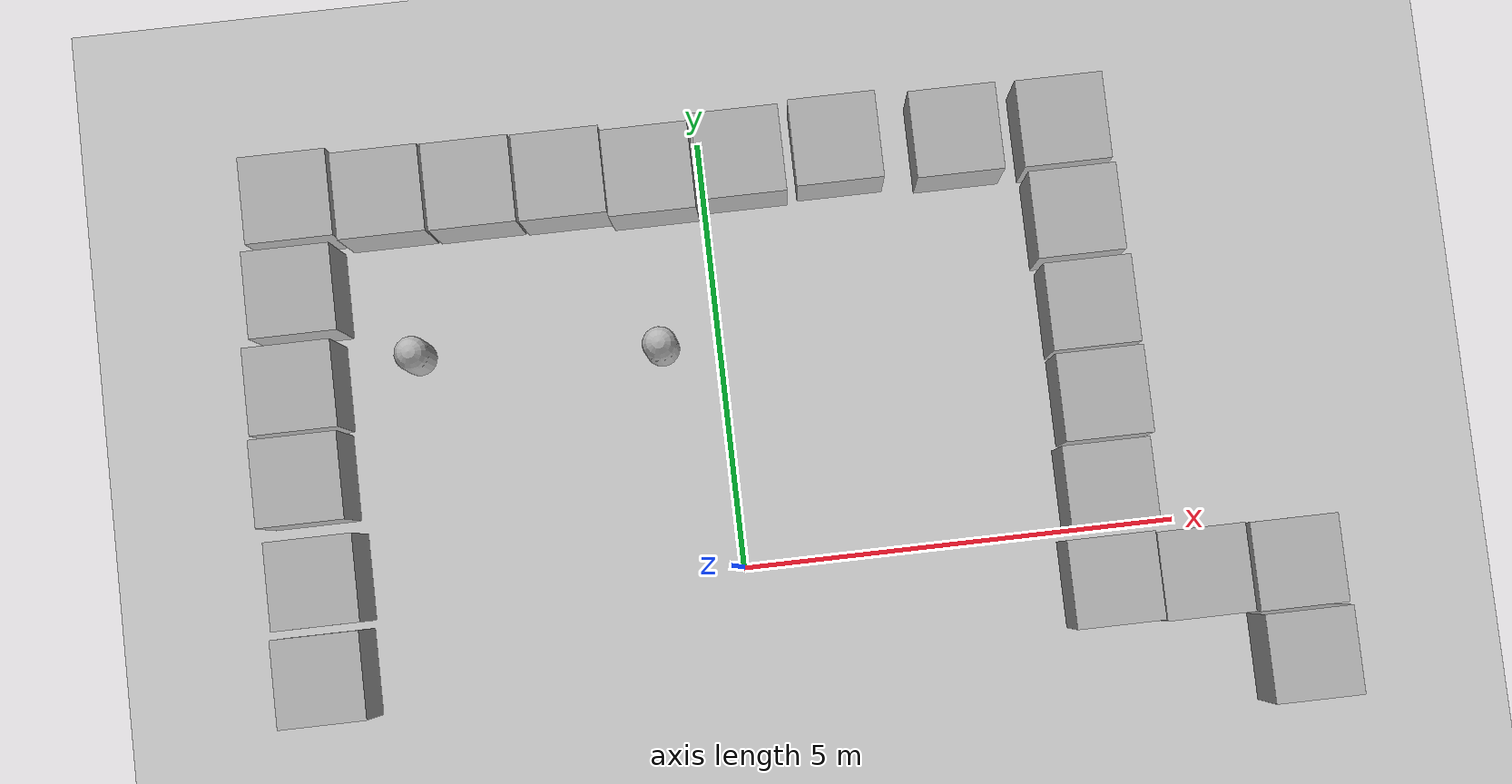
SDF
<sdf version="1.9">
 <world name="empty">
  <model name="ground_plane">
   <static>true</static>
   <link name="link">
    <collision name="collision">
     <geometry><plane><normal>0 0 1</normal><size>100 100</size></plane></geometry>
    </collision>
    <visual name="visual">
     <geometry><plane><normal>0 0 1</normal><size>100 100</size></plane></geometry>
     <material>
      <ambient>0.8 0.8 0.8 1</ambient>
      <diffuse>0.8 0.8 0.8 1</diffuse>
      <specular>0.8 0.8 0.8 1</specular>
     </material>
    </visual>
    <inertial>
     <mass>1</mass>
     <inertia><ixx>1</ixx><ixy>0</ixy><ixz>0</ixz><iyy>1</iyy><iyz>0</iyz><izz>1</izz></inertia>
    </inertial>
   </link>
  </model>
  <model name="box">
   <pose>4.25716 2.52176 0.5 0 -0 0</pose>
   <link name="box_link">
    <inertial>
     <inertia><ixx>0.16666</ixx><ixy>0</ixy><ixz>0</ixz><iyy>0.16666</iyy><iyz>0</iyz><izz>0.16666</izz></inertia>
     <mass>1</mass>
    </inertial>
    <collision name="box_collision"><geometry><box><size>1 1 1</size></box></geometry></collision>
    <visual name="box_visual">
     <geometry><box><size>1 1 1</size></box></geometry>
     <material>
      <ambient>0.3 0.3 0.3 1</ambient>
      <diffuse>0.7 0.7 0.7 1</diffuse>
      <specular>1 1 1 1</specular>
     </material>
    </visual>
   </link>
   <static>false</static>
  </model>
  <model name="box_0">
   <pose>4.26721 1.48635 0.5 0 -0 0</pose>
   <link name="box_link">
    <inertial>
     <inertia><ixx>0.16666</ixx><ixy>0</ixy><ixz>0</ixz><iyy>0.16666</iyy><iyz>0</iyz><izz>0.16666</izz></inertia>
     <mass>1</mass>
    </inertial>
    <collision name="box_collision"><geometry><box><size>1 1 1</size></box></geometry></collision>
    <visual name="box_visual">
     <geometry><box><size>1 1 1</size></box></geometry>
     <material>
      <ambient>0.3 0.3 0.3 1</ambient>
      <diffuse>0.7 0.7 0.7 1</diffuse>
      <specular>1 1 1 1</specular>
     </material>
    </visual>
   </link>
   <static>false</static>
  </model>
  <model name="box_1">
   <pose>4.20971 0.445749 0.5 0 -0 0</pose>
   <link name="box_link">
    <inertial>
     <inertia><ixx>0.16666</ixx><ixy>0</ixy><ixz>0</ixz><iyy>0.16666</iyy><iyz>0</iyz><izz>0.16666</izz></inertia>
     <mass>1</mass>
    </inertial>
    <collision name="box_collision"><geometry><box><size>1 1 1</size></box></geometry></collision>
    <visual name="box_visual">
     <geometry><box><size>1 1 1</size></box></geometry>
     <material>
      <ambient>0.3 0.3 0.3 1</ambient>
      <diffuse>0.7 0.7 0.7 1</diffuse>
      <specular>1 1 1 1</specular>
     </material>
    </visual>
   </link>
   <static>false</static>
  </model>
  <model name="box_2">
   <pose>4.13558 -0.610376 0.5 0 -0 0</pose>
   <link name="box_link">
    <inertial>
     <inertia><ixx>0.16666</ixx><ixy>0</ixy><ixz>0</ixz><iyy>0.16666</iyy><iyz>0</iyz><izz>0.16666</izz></inertia>
     <mass>1</mass>
    </inertial>
    <collision name="box_collision"><geometry><box><size>1 1 1</size></box></geometry></collision>
    <visual name="box_visual">
     <geometry><box><size>1 1 1</size></box></geometry>
     <material>
      <ambient>0.3 0.3 0.3 1</ambient>
      <diffuse>0.7 0.7 0.7 1</diffuse>
      <specular>1 1 1 1</specular>
     </material>
    </visual>
   </link>
   <static>false</static>
  </model>
  <model name="box_3">
   <pose>5.14532 -0.630315 0.5 0 -0 0</pose>
   <link name="box_link">
    <inertial>
     <inertia><ixx>0.16666</ixx><ixy>0</ixy><ixz>0</ixz><iyy>0.16666</iyy><iyz>0</iyz><izz>0.16666</izz></inertia>
     <mass>1</mass>
    </inertial>
    <collision name="box_collision"><geometry><box><size>1 1 1</size></box></geometry></collision>
    <visual name="box_visual">
     <geometry><box><size>1 1 1</size></box></geometry>
     <material>
      <ambient>0.3 0.3 0.3 1</ambient>
      <diffuse>0.7 0.7 0.7 1</diffuse>
      <specular>1 1 1 1</specular>
     </material>
    </visual>
   </link>
   <static>false</static>
  </model>
  <model name="box_4">
   <pose>6.19145 -0.640033 0.5 0 -0 0</pose>
   <link name="box_link">
    <inertial>
     <inertia><ixx>0.16666</ixx><ixy>0</ixy><ixz>0</ixz><iyy>0.16666</iyy><iyz>0</iyz><izz>0.16666</izz></inertia>
     <mass>1</mass>
    </inertial>
    <collision name="box_collision"><geometry><box><size>1 1 1</size></box></geometry></collision>
    <visual name="box_visual">
     <geometry><box><size>1 1 1</size></box></geometry>
     <material>
      <ambient>0.3 0.3 0.3 1</ambient>
      <diffuse>0.7 0.7 0.7 1</diffuse>
      <specular>1 1 1 1</specular>
     </material>
    </visual>
   </link>
   <static>false</static>
  </model>
  <model name="box_5">
   <pose>6.22858 -1.6771 0.5 0 -0 0</pose>
   <link name="box_link">
    <inertial>
     <inertia><ixx>0.16666</ixx><ixy>0</ixy><ixz>0</ixz><iyy>0.16666</iyy><iyz>0</iyz><izz>0.16666</izz></inertia>
     <mass>1</mass>
    </inertial>
    <collision name="box_collision"><geometry><box><size>1 1 1</size></box></geometry></collision>
    <visual name="box_visual">
     <geometry><box><size>1 1 1</size></box></geometry>
     <material>
      <ambient>0.3 0.3 0.3 1</ambient>
      <diffuse>0.7 0.7 0.7 1</diffuse>
      <specular>1 1 1 1</specular>
     </material>
    </visual>
   </link>
   <static>false</static>
  </model>
  <model name="box_9">
   <pose>4.21655 3.58199 0.5 0 -0 0</pose>
   <link name="box_link">
    <inertial>
     <inertia><ixx>0.16666</ixx><ixy>0</ixy><ixz>0</ixz><iyy>0.16666</iyy><iyz>0</iyz><izz>0.16666</izz></inertia>
     <mass>1</mass>
    </inertial>
    <collision name="box_collision"><geometry><box><size>1 1 1</size></box></geometry></collision>
    <visual name="box_visual">
     <geometry><box><size>1 1 1</size></box></geometry>
     <material>
      <ambient>0.3 0.3 0.3 1</ambient>
      <diffuse>0.7 0.7 0.7 1</diffuse>
      <specular>1 1 1 1</specular>
     </material>
    </visual>
   </link>
   <static>false</static>
  </model>
  <model name="box_10">
   <pose>4.18778 4.6375 0.5 0 -0 0</pose>
   <link name="box_link">
    <inertial>
     <inertia><ixx>0.16666</ixx><ixy>0</ixy><ixz>0</ixz><iyy>0.16666</iyy><iyz>0</iyz><izz>0.16666</izz></inertia>
     <mass>1</mass>
    </inertial>
    <collision name="box_collision"><geometry><box><size>1 1 1</size></box></geometry></collision>
    <visual name="box_visual">
     <geometry><box><size>1 1 1</size></box></geometry>
     <material>
      <ambient>0.3 0.3 0.3 1</ambient>
      <diffuse>0.7 0.7 0.7 1</diffuse>
      <specular>1 1 1 1</specular>
     </material>
    </visual>
   </link>
   <static>false</static>
  </model>
  <model name="box_11">
   <pose>2.96363 4.6518 0.5 0 -0 0</pose>
   <link name="box_link">
    <inertial>
     <inertia><ixx>0.16666</ixx><ixy>0</ixy><ixz>0</ixz><iyy>0.16666</iyy><iyz>0</iyz><izz>0.16666</izz></inertia>
     <mass>1</mass>
    </inertial>
    <collision name="box_collision"><geometry><box><size>1 1 1</size></box></geometry></collision>
    <visual name="box_visual">
     <geometry><box><size>1 1 1</size></box></geometry>
     <material>
      <ambient>0.3 0.3 0.3 1</ambient>
      <diffuse>0.7 0.7 0.7 1</diffuse>
      <specular>1 1 1 1</specular>
     </material>
    </visual>
   </link>
   <static>false</static>
  </model>
  <model name="box_12">
   <pose>1.59067 4.71205 0.5 0 -0 0</pose>
   <link name="box_link">
    <inertial>
     <inertia><ixx>0.16666</ixx><ixy>0</ixy><ixz>0</ixz><iyy>0.16666</iyy><iyz>0</iyz><izz>0.16666</izz></inertia>
     <mass>1</mass>
    </inertial>
    <collision name="box_collision"><geometry><box><size>1 1 1</size></box></geometry></collision>
    <visual name="box_visual">
     <geometry><box><size>1 1 1</size></box></geometry>
     <material>
      <ambient>0.3 0.3 0.3 1</ambient>
      <diffuse>0.7 0.7 0.7 1</diffuse>
      <specular>1 1 1 1</specular>
     </material>
    </visual>
   </link>
   <static>false</static>
  </model>
  <model name="box_13">
   <pose>0.474826 4.68056 0.5 0 -0 0</pose>
   <link name="box_link">
    <inertial>
     <inertia><ixx>0.16666</ixx><ixy>0</ixy><ixz>0</ixz><iyy>0.16666</iyy><iyz>0</iyz><izz>0.16666</izz></inertia>
     <mass>1</mass>
    </inertial>
    <collision name="box_collision"><geometry><box><size>1 1 1</size></box></geometry></collision>
    <visual name="box_visual">
     <geometry><box><size>1 1 1</size></box></geometry>
     <material>
      <ambient>0.3 0.3 0.3 1</ambient>
      <diffuse>0.7 0.7 0.7 1</diffuse>
      <specular>1 1 1 1</specular>
     </material>
    </visual>
   </link>
   <static>false</static>
  </model>
  <model name="box_14">
   <pose>-0.571616 4.60503 0.5 0 -0 0</pose>
   <link name="box_link">
    <inertial>
     <inertia><ixx>0.16666</ixx><ixy>0</ixy><ixz>0</ixz><iyy>0.16666</iyy><iyz>0</iyz><izz>0.16666</izz></inertia>
     <mass>1</mass>
    </inertial>
    <collision name="box_collision"><geometry><box><size>1 1 1</size></box></geometry></collision>
    <visual name="box_visual">
     <geometry><box><size>1 1 1</size></box></geometry>
     <material>
      <ambient>0.3 0.3 0.3 1</ambient>
      <diffuse>0.7 0.7 0.7 1</diffuse>
      <specular>1 1 1 1</specular>
     </material>
    </visual>
   </link>
   <static>false</static>
  </model>
  <model name="box_15">
   <pose>-1.58468 4.66608 0.5 0 -0 0</pose>
   <link name="box_link">
    <inertial>
     <inertia><ixx>0.16666</ixx><ixy>0</ixy><ixz>0</ixz><iyy>0.16666</iyy><iyz>0</iyz><izz>0.16666</izz></inertia>
     <mass>1</mass>
    </inertial>
    <collision name="box_collision"><geometry><box><size>1 1 1</size></box></geometry></collision>
    <visual name="box_visual">
     <geometry><box><size>1 1 1</size></box></geometry>
     <material>
      <ambient>0.3 0.3 0.3 1</ambient>
      <diffuse>0.7 0.7 0.7 1</diffuse>
      <specular>1 1 1 1</specular>
     </material>
    </visual>
   </link>
   <static>false</static>
  </model>
  <model name="box_16">
   <pose>-2.61521 4.67735 0.5 0 -0 0</pose>
   <link name="box_link">
    <inertial>
     <inertia><ixx>0.16666</ixx><ixy>0</ixy><ixz>0</ixz><iyy>0.16666</iyy><iyz>0</iyz><izz>0.16666</izz></inertia>
     <mass>1</mass>
    </inertial>
    <collision name="box_collision"><geometry><box><size>1 1 1</size></box></geometry></collision>
    <visual name="box_visual">
     <geometry><box><size>1 1 1</size></box></geometry>
     <material>
      <ambient>0.3 0.3 0.3 1</ambient>
      <diffuse>0.7 0.7 0.7 1</diffuse>
      <specular>1 1 1 1</specular>
     </material>
    </visual>
   </link>
   <static>false</static>
  </model>
  <model name="box_17">
   <pose>-3.64818 4.6887 0.5 0 -0 0</pose>
   <link name="box_link">
    <inertial>
     <inertia><ixx>0.16666</ixx><ixy>0</ixy><ixz>0</ixz><iyy>0.16666</iyy><iyz>0</iyz><izz>0.16666</izz></inertia>
     <mass>1</mass>
    </inertial>
    <collision name="box_collision"><geometry><box><size>1 1 1</size></box></geometry></collision>
    <visual name="box_visual">
     <geometry><box><size>1 1 1</size></box></geometry>
     <material>
      <ambient>0.3 0.3 0.3 1</ambient>
      <diffuse>0.7 0.7 0.7 1</diffuse>
      <specular>1 1 1 1</specular>
     </material>
    </visual>
   </link>
   <static>false</static>
  </model>
  <model name="box_18">
   <pose>-4.69033 4.75286 0.5 0 -0 0</pose>
   <link name="box_link">
    <inertial>
     <inertia><ixx>0.16666</ixx><ixy>0</ixy><ixz>0</ixz><iyy>0.16666</iyy><iyz>0</iyz><izz>0.16666</izz></inertia>
     <mass>1</mass>
    </inertial>
    <collision name="box_collision"><geometry><box><size>1 1 1</size></box></geometry></collision>
    <visual name="box_visual">
     <geometry><box><size>1 1 1</size></box></geometry>
     <material>
      <ambient>0.3 0.3 0.3 1</ambient>
      <diffuse>0.7 0.7 0.7 1</diffuse>
      <specular>1 1 1 1</specular>
     </material>
    </visual>
   </link>
   <static>false</static>
  </model>
  <model name="box_19">
   <pose>-4.74822 3.67565 0.5 0 -0 0</pose>
   <link name="box_link">
    <inertial>
     <inertia><ixx>0.16666</ixx><ixy>0</ixy><ixz>0</ixz><iyy>0.16666</iyy><iyz>0</iyz><izz>0.16666</izz></inertia>
     <mass>1</mass>
    </inertial>
    <collision name="box_collision"><geometry><box><size>1 1 1</size></box></geometry></collision>
    <visual name="box_visual">
     <geometry><box><size>1 1 1</size></box></geometry>
     <material>
      <ambient>0.3 0.3 0.3 1</ambient>
      <diffuse>0.7 0.7 0.7 1</diffuse>
      <specular>1 1 1 1</specular>
     </material>
    </visual>
   </link>
   <static>false</static>
  </model>
  <model name="box_20">
   <pose>-4.84161 2.58379 0.5 0 -0 0</pose>
   <link name="box_link">
    <inertial>
     <inertia><ixx>0.16666</ixx><ixy>0</ixy><ixz>0</ixz><iyy>0.16666</iyy><iyz>0</iyz><izz>0.16666</izz></inertia>
     <mass>1</mass>
    </inertial>
    <collision name="box_collision"><geometry><box><size>1 1 1</size></box></geometry></collision>
    <visual name="box_visual">
     <geometry><box><size>1 1 1</size></box></geometry>
     <material>
      <ambient>0.3 0.3 0.3 1</ambient>
      <diffuse>0.7 0.7 0.7 1</diffuse>
      <specular>1 1 1 1</specular>
     </material>
    </visual>
   </link>
   <static>false</static>
  </model>
  <model name="box_21">
   <pose>-4.86638 1.5426 0.5 0 -0 0</pose>
   <link name="box_link">
    <inertial>
     <inertia><ixx>0.16666</ixx><ixy>0</ixy><ixz>0</ixz><iyy>0.16666</iyy><iyz>0</iyz><izz>0.16666</izz></inertia>
     <mass>1</mass>
    </inertial>
    <collision name="box_collision"><geometry><box><size>1 1 1</size></box></geometry></collision>
    <visual name="box_visual">
     <geometry><box><size>1 1 1</size></box></geometry>
     <material>
      <ambient>0.3 0.3 0.3 1</ambient>
      <diffuse>0.7 0.7 0.7 1</diffuse>
      <specular>1 1 1 1</specular>
     </material>
    </visual>
   </link>
   <static>false</static>
  </model>
  <model name="box_22">
   <pose>-4.80389 0.380437 0.5 0 -0 0</pose>
   <link name="box_link">
    <inertial>
     <inertia><ixx>0.16666</ixx><ixy>0</ixy><ixz>0</ixz><iyy>0.16666</iyy><iyz>0</iyz><izz>0.16666</izz></inertia>
     <mass>1</mass>
    </inertial>
    <collision name="box_collision"><geometry><box><size>1 1 1</size></box></geometry></collision>
    <visual name="box_visual">
     <geometry><box><size>1 1 1</size></box></geometry>
     <material>
      <ambient>0.3 0.3 0.3 1</ambient>
      <diffuse>0.7 0.7 0.7 1</diffuse>
      <specular>1 1 1 1</specular>
     </material>
    </visual>
   </link>
   <static>false</static>
  </model>
  <model name="box_23">
   <pose>-4.83006 -0.710249 0.5 0 -0 0</pose>
   <link name="box_link">
    <inertial>
     <inertia><ixx>0.16666</ixx><ixy>0</ixy><ixz>0</ixz><iyy>0.16666</iyy><iyz>0</iyz><izz>0.16666</izz></inertia>
     <mass>1</mass>
    </inertial>
    <collision name="box_collision"><geometry><box><size>1 1 1</size></box></geometry></collision>
    <visual name="box_visual">
     <geometry><box><size>1 1 1</size></box></geometry>
     <material>
      <ambient>0.3 0.3 0.3 1</ambient>
      <diffuse>0.7 0.7 0.7 1</diffuse>
      <specular>1 1 1 1</specular>
     </material>
    </visual>
   </link>
   <static>false</static>
  </model>
  <model name="capsule">
   <pose>-3.47132 2.83157 0.5 0 -0 0</pose>
   <link name="capsule_link">
    <inertial>
     <inertia>
      <ixx>0.074153999999999998</ixx>
      <ixy>0</ixy>
      <ixz>0</ixz>
      <iyy>0.074153999999999998</iyy>
      <iyz>0</iyz>
      <izz>0.018769000000000001</izz>
     </inertia>
     <mass>1</mass>
    </inertial>
    <collision name="capsule_collision">
     <geometry>
      <capsule><radius>0.20000000000000001</radius><length>0.59999999999999998</length></capsule>
     </geometry>
    </collision>
    <visual name="capsule_visual">
     <geometry>
      <capsule><radius>0.20000000000000001</radius><length>0.59999999999999998</length></capsule>
     </geometry>
     <material>
      <ambient>0.3 0.3 0.3 1</ambient>
      <diffuse>0.7 0.7 0.7 1</diffuse>
      <specular>1 1 1 1</specular>
     </material>
    </visual>
   </link>
   <static>false</static>
  </model>
  <model name="capsule_0">
   <pose>-0.659767 2.62353 0.5 0 -0 0</pose>
   <link name="capsule_link">
    <inertial>
     <inertia>
      <ixx>0.074153999999999998</ixx>
      <ixy>0</ixy>
      <ixz>0</ixz>
      <iyy>0.074153999999999998</iyy>
      <iyz>0</iyz>
      <izz>0.018769000000000001</izz>
     </inertia>
     <mass>1</mass>
    </inertial>
    <collision name="capsule_collision">
     <geometry>
      <capsule><radius>0.20000000000000001</radius><length>0.59999999999999998</length></capsule>
     </geometry>
    </collision>
    <visual name="capsule_visual">
     <geometry>
      <capsule><radius>0.20000000000000001</radius><length>0.59999999999999998</length></capsule>
     </geometry>
     <material>
      <ambient>0.3 0.3 0.3 1</ambient>
      <diffuse>0.7 0.7 0.7 1</diffuse>
      <specular>1 1 1 1</specular>
     </material>
    </visual>
   </link>
   <static>false</static>
  </model>
 </world>
</sdf>
